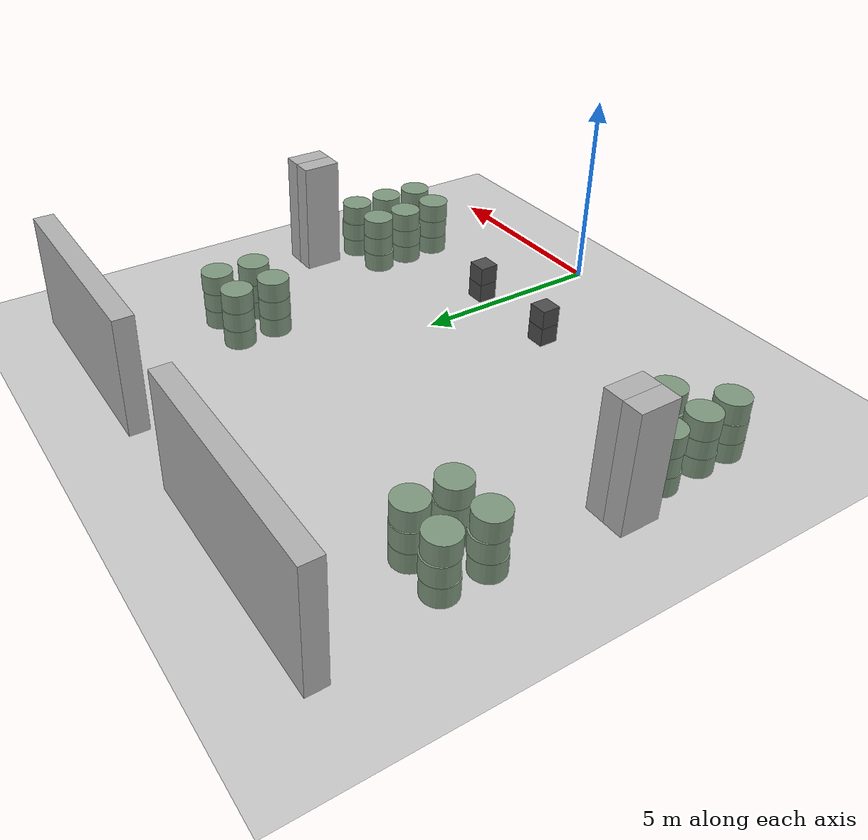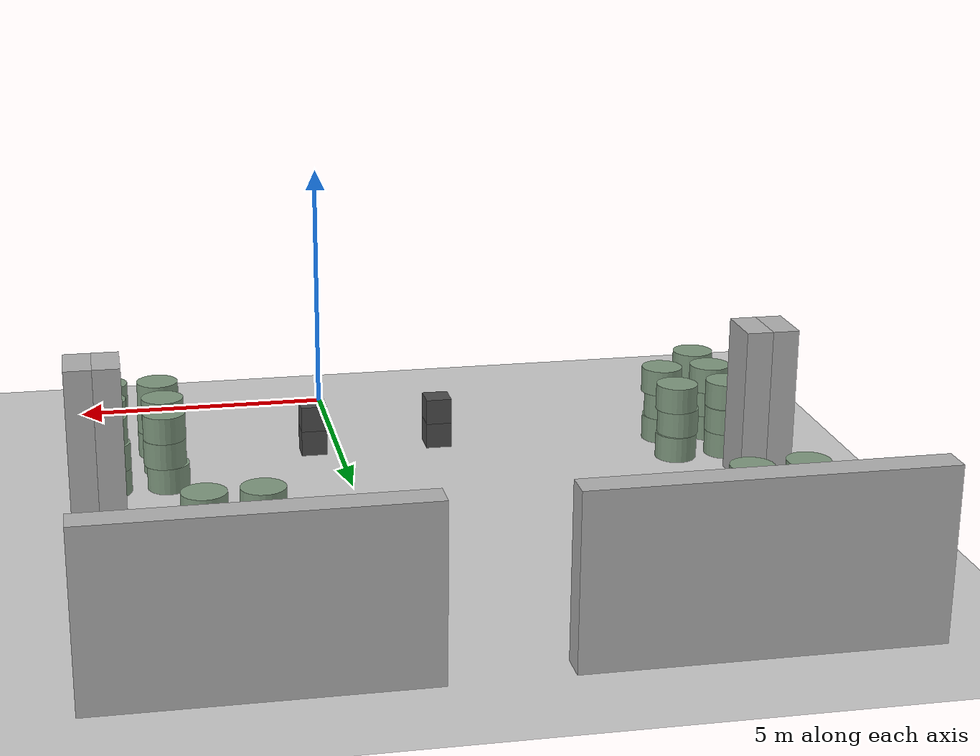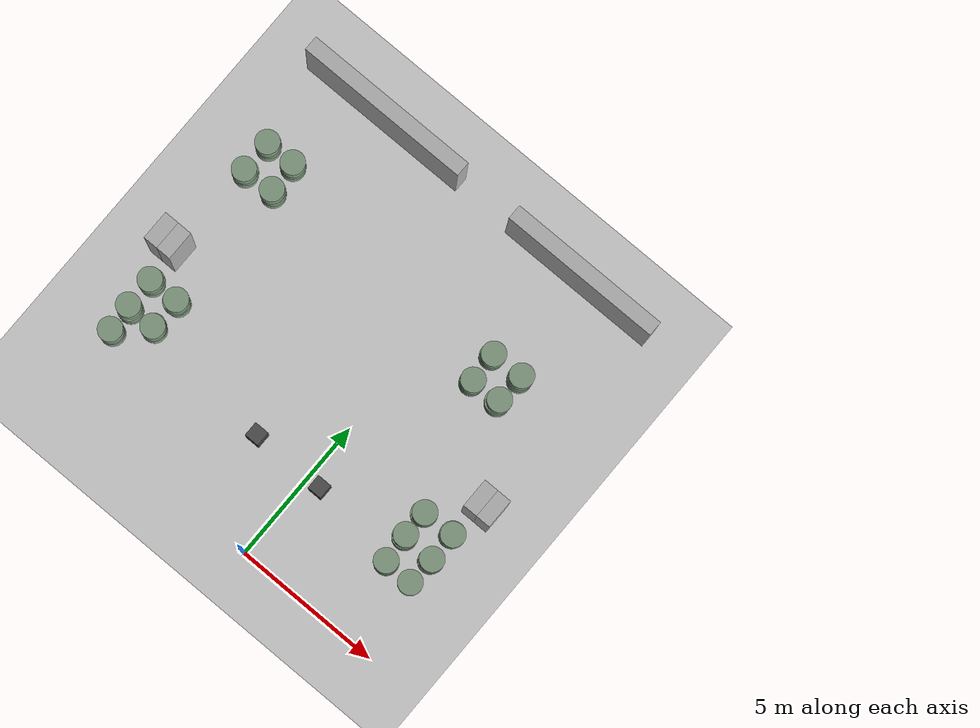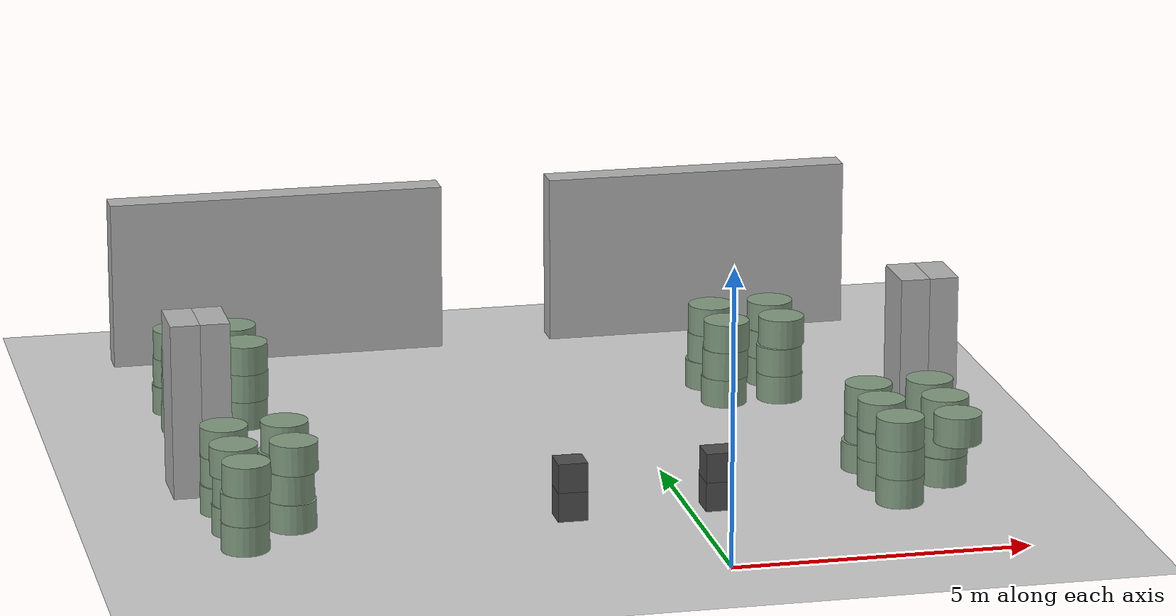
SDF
<sdf version="1.6">
 <world name="default">
  <include><uri>model://ground_plane</uri></include>
  <model name="wall_3">
   <pose>-8.0 5.75 1.5 0 -0 0</pose>
   <static>True</static>
   <link name="link">
    <inertial>
     <mass>100</mass>
     <inertia>
      <ixx>0.166667</ixx>
      <ixy>0</ixy>
      <ixz>0</ixz>
      <iyy>0.166667</iyy>
      <iyz>0</iyz>
      <izz>0.166667</izz>
     </inertia>
    </inertial>
    <collision name="collision"><geometry><box><size>0.5 1.0 3.0</size></box></geometry></collision>
    <visual name="visual">
     <geometry><box><size>0.5 1.0 3.0</size></box></geometry>
     <material><ambient>0.7 0.7 0.7 1</ambient><diffuse>0.7 0.7 0.7 1</diffuse></material>
    </visual>
   </link>
  </model>
  <model name="wall_6">
   <pose>-7.5 5.75 1.5 0 -0 0</pose>
   <static>True</static>
   <link name="link">
    <inertial>
     <mass>100</mass>
     <inertia>
      <ixx>0.166667</ixx>
      <ixy>0</ixy>
      <ixz>0</ixz>
      <iyy>0.166667</iyy>
      <iyz>0</iyz>
      <izz>0.166667</izz>
     </inertia>
    </inertial>
    <collision name="collision"><geometry><box><size>0.5 1.0 3.0</size></box></geometry></collision>
    <visual name="visual">
     <geometry><box><size>0.5 1.0 3.0</size></box></geometry>
     <material><ambient>0.7 0.7 0.7 1</ambient><diffuse>0.7 0.7 0.7 1</diffuse></material>
    </visual>
   </link>
  </model>
  <model name="wall_9">
   <pose>4.5 5.75 1.5 0 -0 0</pose>
   <static>True</static>
   <link name="link">
    <inertial>
     <mass>100</mass>
     <inertia>
      <ixx>0.166667</ixx>
      <ixy>0</ixy>
      <ixz>0</ixz>
      <iyy>0.166667</iyy>
      <iyz>0</iyz>
      <izz>0.166667</izz>
     </inertia>
    </inertial>
    <collision name="collision"><geometry><box><size>0.5 1.0 3.0</size></box></geometry></collision>
    <visual name="visual">
     <geometry><box><size>0.5 1.0 3.0</size></box></geometry>
     <material><ambient>0.7 0.7 0.7 1</ambient><diffuse>0.7 0.7 0.7 1</diffuse></material>
    </visual>
   </link>
  </model>
  <model name="wall_12">
   <pose>5.0 5.75 1.5 0 -0 0</pose>
   <static>True</static>
   <link name="link">
    <inertial>
     <mass>100</mass>
     <inertia>
      <ixx>0.166667</ixx>
      <ixy>0</ixy>
      <ixz>0</ixz>
      <iyy>0.166667</iyy>
      <iyz>0</iyz>
      <izz>0.166667</izz>
     </inertia>
    </inertial>
    <collision name="collision"><geometry><box><size>0.5 1.0 3.0</size></box></geometry></collision>
    <visual name="visual">
     <geometry><box><size>0.5 1.0 3.0</size></box></geometry>
     <material><ambient>0.7 0.7 0.7 1</ambient><diffuse>0.7 0.7 0.7 1</diffuse></material>
    </visual>
   </link>
  </model>
  <model name="wall_15">
   <pose>-5.25 13.0 1.5 0 -0 0</pose>
   <static>True</static>
   <link name="link">
    <inertial>
     <mass>100</mass>
     <inertia>
      <ixx>0.166667</ixx>
      <ixy>0</ixy>
      <ixz>0</ixz>
      <iyy>0.166667</iyy>
      <iyz>0</iyz>
      <izz>0.166667</izz>
     </inertia>
    </inertial>
    <collision name="collision"><geometry><box><size>6.0 0.5 3.0</size></box></geometry></collision>
    <visual name="visual">
     <geometry><box><size>6.0 0.5 3.0</size></box></geometry>
     <material><ambient>0.7 0.7 0.7 1</ambient><diffuse>0.7 0.7 0.7 1</diffuse></material>
    </visual>
   </link>
  </model>
  <model name="wall_16">
   <pose>2.5 13.0 1.5 0 -0 0</pose>
   <static>True</static>
   <link name="link">
    <inertial>
     <mass>100</mass>
     <inertia>
      <ixx>0.166667</ixx>
      <ixy>0</ixy>
      <ixz>0</ixz>
      <iyy>0.166667</iyy>
      <iyz>0</iyz>
      <izz>0.166667</izz>
     </inertia>
    </inertial>
    <collision name="collision"><geometry><box><size>5.5 0.5 3.0</size></box></geometry></collision>
    <visual name="visual">
     <geometry><box><size>5.5 0.5 3.0</size></box></geometry>
     <material><ambient>0.7 0.7 0.7 1</ambient><diffuse>0.7 0.7 0.7 1</diffuse></material>
    </visual>
   </link>
  </model>
  <model name="unit_box_2">
   <pose>-2.0 3.0 0.25 0 -0 0</pose>
   <static>True</static>
   <link name="link">
    <inertial>
     <mass>100</mass>
     <inertia>
      <ixx>0.166667</ixx>
      <ixy>0</ixy>
      <ixz>0</ixz>
      <iyy>0.166667</iyy>
      <iyz>0</iyz>
      <izz>0.166667</izz>
     </inertia>
    </inertial>
    <collision name="collision"><geometry><box><size>0.5 0.5 0.5</size></box></geometry></collision>
    <visual name="visual">
     <geometry><box><size>0.5 0.5 0.5</size></box></geometry>
     <material><ambient>0.3 0.3 0.3 1</ambient><diffuse>0.3 0.3 0.3 1</diffuse></material>
    </visual>
   </link>
  </model>
  <model name="unit_box_3">
   <pose>-2.0 3.0 0.75 0 -0 0</pose>
   <static>True</static>
   <link name="link">
    <inertial>
     <mass>100</mass>
     <inertia>
      <ixx>0.166667</ixx>
      <ixy>0</ixy>
      <ixz>0</ixz>
      <iyy>0.166667</iyy>
      <iyz>0</iyz>
      <izz>0.166667</izz>
     </inertia>
    </inertial>
    <collision name="collision"><geometry><box><size>0.5 0.5 0.5</size></box></geometry></collision>
    <visual name="visual">
     <geometry><box><size>0.5 0.5 0.5</size></box></geometry>
     <material><ambient>0.3 0.3 0.3 1</ambient><diffuse>0.3 0.3 0.3 1</diffuse></material>
    </visual>
   </link>
  </model>
  <model name="unit_box_24">
   <pose>0.5 3.0 0.25 0 -0 0</pose>
   <static>True</static>
   <link name="link">
    <inertial>
     <mass>100</mass>
     <inertia>
      <ixx>0.166667</ixx>
      <ixy>0</ixy>
      <ixz>0</ixz>
      <iyy>0.166667</iyy>
      <iyz>0</iyz>
      <izz>0.166667</izz>
     </inertia>
    </inertial>
    <collision name="collision"><geometry><box><size>0.5 0.5 0.5</size></box></geometry></collision>
    <visual name="visual">
     <geometry><box><size>0.5 0.5 0.5</size></box></geometry>
     <material><ambient>0.3 0.3 0.3 1</ambient><diffuse>0.3 0.3 0.3 1</diffuse></material>
    </visual>
   </link>
  </model>
  <model name="unit_box_25">
   <pose>0.5 3.0 0.75 0 -0 0</pose>
   <static>True</static>
   <link name="link">
    <inertial>
     <mass>100</mass>
     <inertia>
      <ixx>0.166667</ixx>
      <ixy>0</ixy>
      <ixz>0</ixz>
      <iyy>0.166667</iyy>
      <iyz>0</iyz>
      <izz>0.166667</izz>
     </inertia>
    </inertial>
    <collision name="collision"><geometry><box><size>0.5 0.5 0.5</size></box></geometry></collision>
    <visual name="visual">
     <geometry><box><size>0.5 0.5 0.5</size></box></geometry>
     <material><ambient>0.3 0.3 0.3 1</ambient><diffuse>0.3 0.3 0.3 1</diffuse></material>
    </visual>
   </link>
  </model>
  <model name="unit_cylinder_39">
   <pose>-7.46776949374 2.55712516854 0.25 0 -0 0</pose>
   <static>True</static>
   <link name="link">
    <inertial>
     <mass>100</mass>
     <inertia><ixx>0.145833</ixx><ixy>0</ixy><ixz>0</ixz><iyy>0.145833</iyy><iyz>0</iyz><izz>0.125</izz></inertia>
    </inertial>
    <collision name="collision">
     <geometry><cylinder><radius>0.4</radius><length>0.5</length></cylinder></geometry>
     <max_contacts>100</max_contacts>
    </collision>
    <visual name="visual">
     <geometry><cylinder><radius>0.4</radius><length>0.5</length></cylinder></geometry>
     <material><ambient>0.5 0.6 0.5 1</ambient><diffuse>0.5 0.6 0.5 1</diffuse></material>
    </visual>
   </link>
  </model>
  <model name="unit_cylinder_40">
   <pose>-7.46211153728 2.56409534766 0.75 0 -0 0</pose>
   <static>True</static>
   <link name="link">
    <inertial>
     <mass>100</mass>
     <inertia><ixx>0.145833</ixx><ixy>0</ixy><ixz>0</ixz><iyy>0.145833</iyy><iyz>0</iyz><izz>0.125</izz></inertia>
    </inertial>
    <collision name="collision">
     <geometry><cylinder><radius>0.4</radius><length>0.5</length></cylinder></geometry>
     <max_contacts>100</max_contacts>
    </collision>
    <visual name="visual">
     <geometry><cylinder><radius>0.4</radius><length>0.5</length></cylinder></geometry>
     <material><ambient>0.5 0.6 0.5 1</ambient><diffuse>0.5 0.6 0.5 1</diffuse></material>
    </visual>
   </link>
  </model>
  <model name="unit_cylinder_41">
   <pose>-7.43585296841 2.55020432169 1.25 0 -0 0</pose>
   <static>True</static>
   <link name="link">
    <inertial>
     <mass>100</mass>
     <inertia><ixx>0.145833</ixx><ixy>0</ixy><ixz>0</ixz><iyy>0.145833</iyy><iyz>0</iyz><izz>0.125</izz></inertia>
    </inertial>
    <collision name="collision">
     <geometry><cylinder><radius>0.4</radius><length>0.5</length></cylinder></geometry>
     <max_contacts>100</max_contacts>
    </collision>
    <visual name="visual">
     <geometry><cylinder><radius>0.4</radius><length>0.5</length></cylinder></geometry>
     <material><ambient>0.5 0.6 0.5 1</ambient><diffuse>0.5 0.6 0.5 1</diffuse></material>
    </visual>
   </link>
  </model>
  <model name="unit_cylinder_42">
   <pose>-7.48597329713 3.43768554424 0.25 0 -0 0</pose>
   <static>True</static>
   <link name="link">
    <inertial>
     <mass>100</mass>
     <inertia><ixx>0.145833</ixx><ixy>0</ixy><ixz>0</ixz><iyy>0.145833</iyy><iyz>0</iyz><izz>0.125</izz></inertia>
    </inertial>
    <collision name="collision">
     <geometry><cylinder><radius>0.4</radius><length>0.5</length></cylinder></geometry>
     <max_contacts>100</max_contacts>
    </collision>
    <visual name="visual">
     <geometry><cylinder><radius>0.4</radius><length>0.5</length></cylinder></geometry>
     <material><ambient>0.5 0.6 0.5 1</ambient><diffuse>0.5 0.6 0.5 1</diffuse></material>
    </visual>
   </link>
  </model>
  <model name="unit_cylinder_43">
   <pose>-7.46325582719 3.43793933564 0.75 0 -0 0</pose>
   <static>True</static>
   <link name="link">
    <inertial>
     <mass>100</mass>
     <inertia><ixx>0.145833</ixx><ixy>0</ixy><ixz>0</ixz><iyy>0.145833</iyy><iyz>0</iyz><izz>0.125</izz></inertia>
    </inertial>
    <collision name="collision">
     <geometry><cylinder><radius>0.4</radius><length>0.5</length></cylinder></geometry>
     <max_contacts>100</max_contacts>
    </collision>
    <visual name="visual">
     <geometry><cylinder><radius>0.4</radius><length>0.5</length></cylinder></geometry>
     <material><ambient>0.5 0.6 0.5 1</ambient><diffuse>0.5 0.6 0.5 1</diffuse></material>
    </visual>
   </link>
  </model>
  <model name="unit_cylinder_44">
   <pose>-7.50015310776 3.47460757541 1.25 0 -0 0</pose>
   <static>True</static>
   <link name="link">
    <inertial>
     <mass>100</mass>
     <inertia><ixx>0.145833</ixx><ixy>0</ixy><ixz>0</ixz><iyy>0.145833</iyy><iyz>0</iyz><izz>0.125</izz></inertia>
    </inertial>
    <collision name="collision">
     <geometry><cylinder><radius>0.4</radius><length>0.5</length></cylinder></geometry>
     <max_contacts>100</max_contacts>
    </collision>
    <visual name="visual">
     <geometry><cylinder><radius>0.4</radius><length>0.5</length></cylinder></geometry>
     <material><ambient>0.5 0.6 0.5 1</ambient><diffuse>0.5 0.6 0.5 1</diffuse></material>
    </visual>
   </link>
  </model>
  <model name="unit_cylinder_45">
   <pose>-7.51903111805 4.50333828293 0.25 0 -0 0</pose>
   <static>True</static>
   <link name="link">
    <inertial>
     <mass>100</mass>
     <inertia><ixx>0.145833</ixx><ixy>0</ixy><ixz>0</ixz><iyy>0.145833</iyy><iyz>0</iyz><izz>0.125</izz></inertia>
    </inertial>
    <collision name="collision">
     <geometry><cylinder><radius>0.4</radius><length>0.5</length></cylinder></geometry>
     <max_contacts>100</max_contacts>
    </collision>
    <visual name="visual">
     <geometry><cylinder><radius>0.4</radius><length>0.5</length></cylinder></geometry>
     <material><ambient>0.5 0.6 0.5 1</ambient><diffuse>0.5 0.6 0.5 1</diffuse></material>
    </visual>
   </link>
  </model>
  <model name="unit_cylinder_46">
   <pose>-7.50111513979 4.52508783471 0.75 0 -0 0</pose>
   <static>True</static>
   <link name="link">
    <inertial>
     <mass>100</mass>
     <inertia><ixx>0.145833</ixx><ixy>0</ixy><ixz>0</ixz><iyy>0.145833</iyy><iyz>0</iyz><izz>0.125</izz></inertia>
    </inertial>
    <collision name="collision">
     <geometry><cylinder><radius>0.4</radius><length>0.5</length></cylinder></geometry>
     <max_contacts>100</max_contacts>
    </collision>
    <visual name="visual">
     <geometry><cylinder><radius>0.4</radius><length>0.5</length></cylinder></geometry>
     <material><ambient>0.5 0.6 0.5 1</ambient><diffuse>0.5 0.6 0.5 1</diffuse></material>
    </visual>
   </link>
  </model>
  <model name="unit_cylinder_47">
   <pose>-7.50561749975 4.48839652024 1.25 0 -0 0</pose>
   <static>True</static>
   <link name="link">
    <inertial>
     <mass>100</mass>
     <inertia><ixx>0.145833</ixx><ixy>0</ixy><ixz>0</ixz><iyy>0.145833</iyy><iyz>0</iyz><izz>0.125</izz></inertia>
    </inertial>
    <collision name="collision">
     <geometry><cylinder><radius>0.4</radius><length>0.5</length></cylinder></geometry>
     <max_contacts>100</max_contacts>
    </collision>
    <visual name="visual">
     <geometry><cylinder><radius>0.4</radius><length>0.5</length></cylinder></geometry>
     <material><ambient>0.5 0.6 0.5 1</ambient><diffuse>0.5 0.6 0.5 1</diffuse></material>
    </visual>
   </link>
  </model>
  <model name="unit_cylinder_48">
   <pose>-7.53351866148 8.94920257883 0.25 0 -0 0</pose>
   <static>True</static>
   <link name="link">
    <inertial>
     <mass>100</mass>
     <inertia><ixx>0.145833</ixx><ixy>0</ixy><ixz>0</ixz><iyy>0.145833</iyy><iyz>0</iyz><izz>0.125</izz></inertia>
    </inertial>
    <collision name="collision">
     <geometry><cylinder><radius>0.4</radius><length>0.5</length></cylinder></geometry>
     <max_contacts>100</max_contacts>
    </collision>
    <visual name="visual">
     <geometry><cylinder><radius>0.4</radius><length>0.5</length></cylinder></geometry>
     <material><ambient>0.5 0.6 0.5 1</ambient><diffuse>0.5 0.6 0.5 1</diffuse></material>
    </visual>
   </link>
  </model>
  <model name="unit_cylinder_49">
   <pose>-7.51068116479 8.96919411964 0.75 0 -0 0</pose>
   <static>True</static>
   <link name="link">
    <inertial>
     <mass>100</mass>
     <inertia><ixx>0.145833</ixx><ixy>0</ixy><ixz>0</ixz><iyy>0.145833</iyy><iyz>0</iyz><izz>0.125</izz></inertia>
    </inertial>
    <collision name="collision">
     <geometry><cylinder><radius>0.4</radius><length>0.5</length></cylinder></geometry>
     <max_contacts>100</max_contacts>
    </collision>
    <visual name="visual">
     <geometry><cylinder><radius>0.4</radius><length>0.5</length></cylinder></geometry>
     <material><ambient>0.5 0.6 0.5 1</ambient><diffuse>0.5 0.6 0.5 1</diffuse></material>
    </visual>
   </link>
  </model>
  <model name="unit_cylinder_50">
   <pose>-7.51052277986 8.923494088 1.25 0 -0 0</pose>
   <static>True</static>
   <link name="link">
    <inertial>
     <mass>100</mass>
     <inertia><ixx>0.145833</ixx><ixy>0</ixy><ixz>0</ixz><iyy>0.145833</iyy><iyz>0</iyz><izz>0.125</izz></inertia>
    </inertial>
    <collision name="collision">
     <geometry><cylinder><radius>0.4</radius><length>0.5</length></cylinder></geometry>
     <max_contacts>100</max_contacts>
    </collision>
    <visual name="visual">
     <geometry><cylinder><radius>0.4</radius><length>0.5</length></cylinder></geometry>
     <material><ambient>0.5 0.6 0.5 1</ambient><diffuse>0.5 0.6 0.5 1</diffuse></material>
    </visual>
   </link>
  </model>
  <model name="unit_cylinder_51">
   <pose>-7.53328613226 10.0430049423 0.25 0 -0 0</pose>
   <static>True</static>
   <link name="link">
    <inertial>
     <mass>100</mass>
     <inertia><ixx>0.145833</ixx><ixy>0</ixy><ixz>0</ixz><iyy>0.145833</iyy><iyz>0</iyz><izz>0.125</izz></inertia>
    </inertial>
    <collision name="collision">
     <geometry><cylinder><radius>0.4</radius><length>0.5</length></cylinder></geometry>
     <max_contacts>100</max_contacts>
    </collision>
    <visual name="visual">
     <geometry><cylinder><radius>0.4</radius><length>0.5</length></cylinder></geometry>
     <material><ambient>0.5 0.6 0.5 1</ambient><diffuse>0.5 0.6 0.5 1</diffuse></material>
    </visual>
   </link>
  </model>
  <model name="unit_cylinder_52">
   <pose>-7.51256771309 10.0580385262 0.75 0 -0 0</pose>
   <static>True</static>
   <link name="link">
    <inertial>
     <mass>100</mass>
     <inertia><ixx>0.145833</ixx><ixy>0</ixy><ixz>0</ixz><iyy>0.145833</iyy><iyz>0</iyz><izz>0.125</izz></inertia>
    </inertial>
    <collision name="collision">
     <geometry><cylinder><radius>0.4</radius><length>0.5</length></cylinder></geometry>
     <max_contacts>100</max_contacts>
    </collision>
    <visual name="visual">
     <geometry><cylinder><radius>0.4</radius><length>0.5</length></cylinder></geometry>
     <material><ambient>0.5 0.6 0.5 1</ambient><diffuse>0.5 0.6 0.5 1</diffuse></material>
    </visual>
   </link>
  </model>
  <model name="unit_cylinder_53">
   <pose>-7.50197945629 10.0178528666 1.25 0 -0 0</pose>
   <static>True</static>
   <link name="link">
    <inertial>
     <mass>100</mass>
     <inertia><ixx>0.145833</ixx><ixy>0</ixy><ixz>0</ixz><iyy>0.145833</iyy><iyz>0</iyz><izz>0.125</izz></inertia>
    </inertial>
    <collision name="collision">
     <geometry><cylinder><radius>0.4</radius><length>0.5</length></cylinder></geometry>
     <max_contacts>100</max_contacts>
    </collision>
    <visual name="visual">
     <geometry><cylinder><radius>0.4</radius><length>0.5</length></cylinder></geometry>
     <material><ambient>0.5 0.6 0.5 1</ambient><diffuse>0.5 0.6 0.5 1</diffuse></material>
    </visual>
   </link>
  </model>
  <model name="unit_cylinder_96">
   <pose>-6.54610745725 3.45770490383 0.25 0 -0 0</pose>
   <static>True</static>
   <link name="link">
    <inertial>
     <mass>100</mass>
     <inertia><ixx>0.145833</ixx><ixy>0</ixy><ixz>0</ixz><iyy>0.145833</iyy><iyz>0</iyz><izz>0.125</izz></inertia>
    </inertial>
    <collision name="collision">
     <geometry><cylinder><radius>0.4</radius><length>0.5</length></cylinder></geometry>
     <max_contacts>100</max_contacts>
    </collision>
    <visual name="visual">
     <geometry><cylinder><radius>0.4</radius><length>0.5</length></cylinder></geometry>
     <material><ambient>0.5 0.6 0.5 1</ambient><diffuse>0.5 0.6 0.5 1</diffuse></material>
    </visual>
   </link>
  </model>
  <model name="unit_cylinder_97">
   <pose>-6.5684343311 3.49515357408 0.75 0 -0 0</pose>
   <static>True</static>
   <link name="link">
    <inertial>
     <mass>100</mass>
     <inertia><ixx>0.145833</ixx><ixy>0</ixy><ixz>0</ixz><iyy>0.145833</iyy><iyz>0</iyz><izz>0.125</izz></inertia>
    </inertial>
    <collision name="collision">
     <geometry><cylinder><radius>0.4</radius><length>0.5</length></cylinder></geometry>
     <max_contacts>100</max_contacts>
    </collision>
    <visual name="visual">
     <geometry><cylinder><radius>0.4</radius><length>0.5</length></cylinder></geometry>
     <material><ambient>0.5 0.6 0.5 1</ambient><diffuse>0.5 0.6 0.5 1</diffuse></material>
    </visual>
   </link>
  </model>
  <model name="unit_cylinder_98">
   <pose>-6.51075116749 3.4484297739 1.25 0 -0 0</pose>
   <static>True</static>
   <link name="link">
    <inertial>
     <mass>100</mass>
     <inertia><ixx>0.145833</ixx><ixy>0</ixy><ixz>0</ixz><iyy>0.145833</iyy><iyz>0</iyz><izz>0.125</izz></inertia>
    </inertial>
    <collision name="collision">
     <geometry><cylinder><radius>0.4</radius><length>0.5</length></cylinder></geometry>
     <max_contacts>100</max_contacts>
    </collision>
    <visual name="visual">
     <geometry><cylinder><radius>0.4</radius><length>0.5</length></cylinder></geometry>
     <material><ambient>0.5 0.6 0.5 1</ambient><diffuse>0.5 0.6 0.5 1</diffuse></material>
    </visual>
   </link>
  </model>
  <model name="unit_cylinder_99">
   <pose>-6.50612689086 4.53830533162 0.25 0 -0 0</pose>
   <static>True</static>
   <link name="link">
    <inertial>
     <mass>100</mass>
     <inertia><ixx>0.145833</ixx><ixy>0</ixy><ixz>0</ixz><iyy>0.145833</iyy><iyz>0</iyz><izz>0.125</izz></inertia>
    </inertial>
    <collision name="collision">
     <geometry><cylinder><radius>0.4</radius><length>0.5</length></cylinder></geometry>
     <max_contacts>100</max_contacts>
    </collision>
    <visual name="visual">
     <geometry><cylinder><radius>0.4</radius><length>0.5</length></cylinder></geometry>
     <material><ambient>0.5 0.6 0.5 1</ambient><diffuse>0.5 0.6 0.5 1</diffuse></material>
    </visual>
   </link>
  </model>
  <model name="unit_cylinder_100">
   <pose>-6.53764586669 4.50114208868 0.75 0 -0 0</pose>
   <static>True</static>
   <link name="link">
    <inertial>
     <mass>100</mass>
     <inertia><ixx>0.145833</ixx><ixy>0</ixy><ixz>0</ixz><iyy>0.145833</iyy><iyz>0</iyz><izz>0.125</izz></inertia>
    </inertial>
    <collision name="collision">
     <geometry><cylinder><radius>0.4</radius><length>0.5</length></cylinder></geometry>
     <max_contacts>100</max_contacts>
    </collision>
    <visual name="visual">
     <geometry><cylinder><radius>0.4</radius><length>0.5</length></cylinder></geometry>
     <material><ambient>0.5 0.6 0.5 1</ambient><diffuse>0.5 0.6 0.5 1</diffuse></material>
    </visual>
   </link>
  </model>
  <model name="unit_cylinder_101">
   <pose>-6.48812432651 4.52600340407 1.25 0 -0 0</pose>
   <static>True</static>
   <link name="link">
    <inertial>
     <mass>100</mass>
     <inertia><ixx>0.145833</ixx><ixy>0</ixy><ixz>0</ixz><iyy>0.145833</iyy><iyz>0</iyz><izz>0.125</izz></inertia>
    </inertial>
    <collision name="collision">
     <geometry><cylinder><radius>0.4</radius><length>0.5</length></cylinder></geometry>
     <max_contacts>100</max_contacts>
    </collision>
    <visual name="visual">
     <geometry><cylinder><radius>0.4</radius><length>0.5</length></cylinder></geometry>
     <material><ambient>0.5 0.6 0.5 1</ambient><diffuse>0.5 0.6 0.5 1</diffuse></material>
    </visual>
   </link>
  </model>
  <model name="unit_cylinder_102">
   <pose>-6.46310162821 9.01994029021 0.25 0 -0 0</pose>
   <static>True</static>
   <link name="link">
    <inertial>
     <mass>100</mass>
     <inertia><ixx>0.145833</ixx><ixy>0</ixy><ixz>0</ixz><iyy>0.145833</iyy><iyz>0</iyz><izz>0.125</izz></inertia>
    </inertial>
    <collision name="collision">
     <geometry><cylinder><radius>0.4</radius><length>0.5</length></cylinder></geometry>
     <max_contacts>100</max_contacts>
    </collision>
    <visual name="visual">
     <geometry><cylinder><radius>0.4</radius><length>0.5</length></cylinder></geometry>
     <material><ambient>0.5 0.6 0.5 1</ambient><diffuse>0.5 0.6 0.5 1</diffuse></material>
    </visual>
   </link>
  </model>
  <model name="unit_cylinder_103">
   <pose>-6.44566242451 9.01991168865 0.75 0 -0 0</pose>
   <static>True</static>
   <link name="link">
    <inertial>
     <mass>100</mass>
     <inertia><ixx>0.145833</ixx><ixy>0</ixy><ixz>0</ixz><iyy>0.145833</iyy><iyz>0</iyz><izz>0.125</izz></inertia>
    </inertial>
    <collision name="collision">
     <geometry><cylinder><radius>0.4</radius><length>0.5</length></cylinder></geometry>
     <max_contacts>100</max_contacts>
    </collision>
    <visual name="visual">
     <geometry><cylinder><radius>0.4</radius><length>0.5</length></cylinder></geometry>
     <material><ambient>0.5 0.6 0.5 1</ambient><diffuse>0.5 0.6 0.5 1</diffuse></material>
    </visual>
   </link>
  </model>
  <model name="unit_cylinder_104">
   <pose>-6.45468588082 8.99519764995 1.25 0 -0 0</pose>
   <static>True</static>
   <link name="link">
    <inertial>
     <mass>100</mass>
     <inertia><ixx>0.145833</ixx><ixy>0</ixy><ixz>0</ixz><iyy>0.145833</iyy><iyz>0</iyz><izz>0.125</izz></inertia>
    </inertial>
    <collision name="collision">
     <geometry><cylinder><radius>0.4</radius><length>0.5</length></cylinder></geometry>
     <max_contacts>100</max_contacts>
    </collision>
    <visual name="visual">
     <geometry><cylinder><radius>0.4</radius><length>0.5</length></cylinder></geometry>
     <material><ambient>0.5 0.6 0.5 1</ambient><diffuse>0.5 0.6 0.5 1</diffuse></material>
    </visual>
   </link>
  </model>
  <model name="unit_cylinder_105">
   <pose>-6.54249363 10.0546821207 0.25 0 -0 0</pose>
   <static>True</static>
   <link name="link">
    <inertial>
     <mass>100</mass>
     <inertia><ixx>0.145833</ixx><ixy>0</ixy><ixz>0</ixz><iyy>0.145833</iyy><iyz>0</iyz><izz>0.125</izz></inertia>
    </inertial>
    <collision name="collision">
     <geometry><cylinder><radius>0.4</radius><length>0.5</length></cylinder></geometry>
     <max_contacts>100</max_contacts>
    </collision>
    <visual name="visual">
     <geometry><cylinder><radius>0.4</radius><length>0.5</length></cylinder></geometry>
     <material><ambient>0.5 0.6 0.5 1</ambient><diffuse>0.5 0.6 0.5 1</diffuse></material>
    </visual>
   </link>
  </model>
  <model name="unit_cylinder_106">
   <pose>-6.52261517724 10.0548798095 0.75 0 -0 0</pose>
   <static>True</static>
   <link name="link">
    <inertial>
     <mass>100</mass>
     <inertia><ixx>0.145833</ixx><ixy>0</ixy><ixz>0</ixz><iyy>0.145833</iyy><iyz>0</iyz><izz>0.125</izz></inertia>
    </inertial>
    <collision name="collision">
     <geometry><cylinder><radius>0.4</radius><length>0.5</length></cylinder></geometry>
     <max_contacts>100</max_contacts>
    </collision>
    <visual name="visual">
     <geometry><cylinder><radius>0.4</radius><length>0.5</length></cylinder></geometry>
     <material><ambient>0.5 0.6 0.5 1</ambient><diffuse>0.5 0.6 0.5 1</diffuse></material>
    </visual>
   </link>
  </model>
  <model name="unit_cylinder_107">
   <pose>-6.4985080753 10.031876296 1.25 0 -0 0</pose>
   <static>True</static>
   <link name="link">
    <inertial>
     <mass>100</mass>
     <inertia><ixx>0.145833</ixx><ixy>0</ixy><ixz>0</ixz><iyy>0.145833</iyy><iyz>0</iyz><izz>0.125</izz></inertia>
    </inertial>
    <collision name="collision">
     <geometry><cylinder><radius>0.4</radius><length>0.5</length></cylinder></geometry>
     <max_contacts>100</max_contacts>
    </collision>
    <visual name="visual">
     <geometry><cylinder><radius>0.4</radius><length>0.5</length></cylinder></geometry>
     <material><ambient>0.5 0.6 0.5 1</ambient><diffuse>0.5 0.6 0.5 1</diffuse></material>
    </visual>
   </link>
  </model>
  <model name="unit_cylinder_108">
   <pose>1.96991130939 8.47924036767 0.25 0 -0 0</pose>
   <static>True</static>
   <link name="link">
    <inertial>
     <mass>100</mass>
     <inertia><ixx>0.145833</ixx><ixy>0</ixy><ixz>0</ixz><iyy>0.145833</iyy><iyz>0</iyz><izz>0.125</izz></inertia>
    </inertial>
    <collision name="collision">
     <geometry><cylinder><radius>0.4</radius><length>0.5</length></cylinder></geometry>
     <max_contacts>100</max_contacts>
    </collision>
    <visual name="visual">
     <geometry><cylinder><radius>0.4</radius><length>0.5</length></cylinder></geometry>
     <material><ambient>0.5 0.6 0.5 1</ambient><diffuse>0.5 0.6 0.5 1</diffuse></material>
    </visual>
   </link>
  </model>
  <model name="unit_cylinder_109">
   <pose>1.98608054619 8.47049042248 0.75 0 -0 0</pose>
   <static>True</static>
   <link name="link">
    <inertial>
     <mass>100</mass>
     <inertia><ixx>0.145833</ixx><ixy>0</ixy><ixz>0</ixz><iyy>0.145833</iyy><iyz>0</iyz><izz>0.125</izz></inertia>
    </inertial>
    <collision name="collision">
     <geometry><cylinder><radius>0.4</radius><length>0.5</length></cylinder></geometry>
     <max_contacts>100</max_contacts>
    </collision>
    <visual name="visual">
     <geometry><cylinder><radius>0.4</radius><length>0.5</length></cylinder></geometry>
     <material><ambient>0.5 0.6 0.5 1</ambient><diffuse>0.5 0.6 0.5 1</diffuse></material>
    </visual>
   </link>
  </model>
  <model name="unit_cylinder_110">
   <pose>2.00215664968 8.46686482537 1.25 0 -0 0</pose>
   <static>True</static>
   <link name="link">
    <inertial>
     <mass>100</mass>
     <inertia><ixx>0.145833</ixx><ixy>0</ixy><ixz>0</ixz><iyy>0.145833</iyy><iyz>0</iyz><izz>0.125</izz></inertia>
    </inertial>
    <collision name="collision">
     <geometry><cylinder><radius>0.4</radius><length>0.5</length></cylinder></geometry>
     <max_contacts>100</max_contacts>
    </collision>
    <visual name="visual">
     <geometry><cylinder><radius>0.4</radius><length>0.5</length></cylinder></geometry>
     <material><ambient>0.5 0.6 0.5 1</ambient><diffuse>0.5 0.6 0.5 1</diffuse></material>
    </visual>
   </link>
  </model>
  <model name="unit_cylinder_111">
   <pose>1.92736257542 9.49311492475 0.25 0 -0 0</pose>
   <static>True</static>
   <link name="link">
    <inertial>
     <mass>100</mass>
     <inertia><ixx>0.145833</ixx><ixy>0</ixy><ixz>0</ixz><iyy>0.145833</iyy><iyz>0</iyz><izz>0.125</izz></inertia>
    </inertial>
    <collision name="collision">
     <geometry><cylinder><radius>0.4</radius><length>0.5</length></cylinder></geometry>
     <max_contacts>100</max_contacts>
    </collision>
    <visual name="visual">
     <geometry><cylinder><radius>0.4</radius><length>0.5</length></cylinder></geometry>
     <material><ambient>0.5 0.6 0.5 1</ambient><diffuse>0.5 0.6 0.5 1</diffuse></material>
    </visual>
   </link>
  </model>
  <model name="unit_cylinder_112">
   <pose>1.95825251011 9.48713726423 0.75 0 -0 0</pose>
   <static>True</static>
   <link name="link">
    <inertial>
     <mass>100</mass>
     <inertia><ixx>0.145833</ixx><ixy>0</ixy><ixz>0</ixz><iyy>0.145833</iyy><iyz>0</iyz><izz>0.125</izz></inertia>
    </inertial>
    <collision name="collision">
     <geometry><cylinder><radius>0.4</radius><length>0.5</length></cylinder></geometry>
     <max_contacts>100</max_contacts>
    </collision>
    <visual name="visual">
     <geometry><cylinder><radius>0.4</radius><length>0.5</length></cylinder></geometry>
     <material><ambient>0.5 0.6 0.5 1</ambient><diffuse>0.5 0.6 0.5 1</diffuse></material>
    </visual>
   </link>
  </model>
  <model name="unit_cylinder_113">
   <pose>1.97346903824 9.47790837451 1.25 0 -0 0</pose>
   <static>True</static>
   <link name="link">
    <inertial>
     <mass>100</mass>
     <inertia><ixx>0.145833</ixx><ixy>0</ixy><ixz>0</ixz><iyy>0.145833</iyy><iyz>0</iyz><izz>0.125</izz></inertia>
    </inertial>
    <collision name="collision">
     <geometry><cylinder><radius>0.4</radius><length>0.5</length></cylinder></geometry>
     <max_contacts>100</max_contacts>
    </collision>
    <visual name="visual">
     <geometry><cylinder><radius>0.4</radius><length>0.5</length></cylinder></geometry>
     <material><ambient>0.5 0.6 0.5 1</ambient><diffuse>0.5 0.6 0.5 1</diffuse></material>
    </visual>
   </link>
  </model>
  <model name="unit_cylinder_114">
   <pose>2.97783924977 8.49112436688 0.25 0 -0 0</pose>
   <static>True</static>
   <link name="link">
    <inertial>
     <mass>100</mass>
     <inertia><ixx>0.145833</ixx><ixy>0</ixy><ixz>0</ixz><iyy>0.145833</iyy><iyz>0</iyz><izz>0.125</izz></inertia>
    </inertial>
    <collision name="collision">
     <geometry><cylinder><radius>0.4</radius><length>0.5</length></cylinder></geometry>
     <max_contacts>100</max_contacts>
    </collision>
    <visual name="visual">
     <geometry><cylinder><radius>0.4</radius><length>0.5</length></cylinder></geometry>
     <material><ambient>0.5 0.6 0.5 1</ambient><diffuse>0.5 0.6 0.5 1</diffuse></material>
    </visual>
   </link>
  </model>
  <model name="unit_cylinder_115">
   <pose>2.96381337933 8.47697777416 0.75 0 -0 0</pose>
   <static>True</static>
   <link name="link">
    <inertial>
     <mass>100</mass>
     <inertia><ixx>0.145833</ixx><ixy>0</ixy><ixz>0</ixz><iyy>0.145833</iyy><iyz>0</iyz><izz>0.125</izz></inertia>
    </inertial>
    <collision name="collision">
     <geometry><cylinder><radius>0.4</radius><length>0.5</length></cylinder></geometry>
     <max_contacts>100</max_contacts>
    </collision>
    <visual name="visual">
     <geometry><cylinder><radius>0.4</radius><length>0.5</length></cylinder></geometry>
     <material><ambient>0.5 0.6 0.5 1</ambient><diffuse>0.5 0.6 0.5 1</diffuse></material>
    </visual>
   </link>
  </model>
  <model name="unit_cylinder_116">
   <pose>3.003820299 8.51843826216 1.25 0 -0 0</pose>
   <static>True</static>
   <link name="link">
    <inertial>
     <mass>100</mass>
     <inertia><ixx>0.145833</ixx><ixy>0</ixy><ixz>0</ixz><iyy>0.145833</iyy><iyz>0</iyz><izz>0.125</izz></inertia>
    </inertial>
    <collision name="collision">
     <geometry><cylinder><radius>0.4</radius><length>0.5</length></cylinder></geometry>
     <max_contacts>100</max_contacts>
    </collision>
    <visual name="visual">
     <geometry><cylinder><radius>0.4</radius><length>0.5</length></cylinder></geometry>
     <material><ambient>0.5 0.6 0.5 1</ambient><diffuse>0.5 0.6 0.5 1</diffuse></material>
    </visual>
   </link>
  </model>
  <model name="unit_cylinder_117">
   <pose>3.03463809573 9.48934584394 0.25 0 -0 0</pose>
   <static>True</static>
   <link name="link">
    <inertial>
     <mass>100</mass>
     <inertia><ixx>0.145833</ixx><ixy>0</ixy><ixz>0</ixz><iyy>0.145833</iyy><iyz>0</iyz><izz>0.125</izz></inertia>
    </inertial>
    <collision name="collision">
     <geometry><cylinder><radius>0.4</radius><length>0.5</length></cylinder></geometry>
     <max_contacts>100</max_contacts>
    </collision>
    <visual name="visual">
     <geometry><cylinder><radius>0.4</radius><length>0.5</length></cylinder></geometry>
     <material><ambient>0.5 0.6 0.5 1</ambient><diffuse>0.5 0.6 0.5 1</diffuse></material>
    </visual>
   </link>
  </model>
  <model name="unit_cylinder_118">
   <pose>3.03286393004 9.49963297129 0.75 0 -0 0</pose>
   <static>True</static>
   <link name="link">
    <inertial>
     <mass>100</mass>
     <inertia><ixx>0.145833</ixx><ixy>0</ixy><ixz>0</ixz><iyy>0.145833</iyy><iyz>0</iyz><izz>0.125</izz></inertia>
    </inertial>
    <collision name="collision">
     <geometry><cylinder><radius>0.4</radius><length>0.5</length></cylinder></geometry>
     <max_contacts>100</max_contacts>
    </collision>
    <visual name="visual">
     <geometry><cylinder><radius>0.4</radius><length>0.5</length></cylinder></geometry>
     <material><ambient>0.5 0.6 0.5 1</ambient><diffuse>0.5 0.6 0.5 1</diffuse></material>
    </visual>
   </link>
  </model>
  <model name="unit_cylinder_119">
   <pose>3.04781011492 9.51356866912 1.25 0 -0 0</pose>
   <static>True</static>
   <link name="link">
    <inertial>
     <mass>100</mass>
     <inertia><ixx>0.145833</ixx><ixy>0</ixy><ixz>0</ixz><iyy>0.145833</iyy><iyz>0</iyz><izz>0.125</izz></inertia>
    </inertial>
    <collision name="collision">
     <geometry><cylinder><radius>0.4</radius><length>0.5</length></cylinder></geometry>
     <max_contacts>100</max_contacts>
    </collision>
    <visual name="visual">
     <geometry><cylinder><radius>0.4</radius><length>0.5</length></cylinder></geometry>
     <material><ambient>0.5 0.6 0.5 1</ambient><diffuse>0.5 0.6 0.5 1</diffuse></material>
    </visual>
   </link>
  </model>
  <model name="unit_cylinder_159">
   <pose>3.51445329329 2.57507568154 0.25 0 -0 0</pose>
   <static>True</static>
   <link name="link">
    <inertial>
     <mass>100</mass>
     <inertia><ixx>0.145833</ixx><ixy>0</ixy><ixz>0</ixz><iyy>0.145833</iyy><iyz>0</iyz><izz>0.125</izz></inertia>
    </inertial>
    <collision name="collision">
     <geometry><cylinder><radius>0.4</radius><length>0.5</length></cylinder></geometry>
     <max_contacts>100</max_contacts>
    </collision>
    <visual name="visual">
     <geometry><cylinder><radius>0.4</radius><length>0.5</length></cylinder></geometry>
     <material><ambient>0.5 0.6 0.5 1</ambient><diffuse>0.5 0.6 0.5 1</diffuse></material>
    </visual>
   </link>
  </model>
  <model name="unit_cylinder_160">
   <pose>3.51379882397 2.57657651586 0.75 0 -0 0</pose>
   <static>True</static>
   <link name="link">
    <inertial>
     <mass>100</mass>
     <inertia><ixx>0.145833</ixx><ixy>0</ixy><ixz>0</ixz><iyy>0.145833</iyy><iyz>0</iyz><izz>0.125</izz></inertia>
    </inertial>
    <collision name="collision">
     <geometry><cylinder><radius>0.4</radius><length>0.5</length></cylinder></geometry>
     <max_contacts>100</max_contacts>
    </collision>
    <visual name="visual">
     <geometry><cylinder><radius>0.4</radius><length>0.5</length></cylinder></geometry>
     <material><ambient>0.5 0.6 0.5 1</ambient><diffuse>0.5 0.6 0.5 1</diffuse></material>
    </visual>
   </link>
  </model>
  <model name="unit_cylinder_161">
   <pose>3.49981522857 2.57346558546 1.25 0 -0 0</pose>
   <static>True</static>
   <link name="link">
    <inertial>
     <mass>100</mass>
     <inertia><ixx>0.145833</ixx><ixy>0</ixy><ixz>0</ixz><iyy>0.145833</iyy><iyz>0</iyz><izz>0.125</izz></inertia>
    </inertial>
    <collision name="collision">
     <geometry><cylinder><radius>0.4</radius><length>0.5</length></cylinder></geometry>
     <max_contacts>100</max_contacts>
    </collision>
    <visual name="visual">
     <geometry><cylinder><radius>0.4</radius><length>0.5</length></cylinder></geometry>
     <material><ambient>0.5 0.6 0.5 1</ambient><diffuse>0.5 0.6 0.5 1</diffuse></material>
    </visual>
   </link>
  </model>
  <model name="unit_cylinder_162">
   <pose>3.45090590069 3.51625748356 0.25 0 -0 0</pose>
   <static>True</static>
   <link name="link">
    <inertial>
     <mass>100</mass>
     <inertia><ixx>0.145833</ixx><ixy>0</ixy><ixz>0</ixz><iyy>0.145833</iyy><iyz>0</iyz><izz>0.125</izz></inertia>
    </inertial>
    <collision name="collision">
     <geometry><cylinder><radius>0.4</radius><length>0.5</length></cylinder></geometry>
     <max_contacts>100</max_contacts>
    </collision>
    <visual name="visual">
     <geometry><cylinder><radius>0.4</radius><length>0.5</length></cylinder></geometry>
     <material><ambient>0.5 0.6 0.5 1</ambient><diffuse>0.5 0.6 0.5 1</diffuse></material>
    </visual>
   </link>
  </model>
  <model name="unit_cylinder_163">
   <pose>3.44574594036 3.51651393248 0.75 0 -0 0</pose>
   <static>True</static>
   <link name="link">
    <inertial>
     <mass>100</mass>
     <inertia><ixx>0.145833</ixx><ixy>0</ixy><ixz>0</ixz><iyy>0.145833</iyy><iyz>0</iyz><izz>0.125</izz></inertia>
    </inertial>
    <collision name="collision">
     <geometry><cylinder><radius>0.4</radius><length>0.5</length></cylinder></geometry>
     <max_contacts>100</max_contacts>
    </collision>
    <visual name="visual">
     <geometry><cylinder><radius>0.4</radius><length>0.5</length></cylinder></geometry>
     <material><ambient>0.5 0.6 0.5 1</ambient><diffuse>0.5 0.6 0.5 1</diffuse></material>
    </visual>
   </link>
  </model>
  <model name="unit_cylinder_164">
   <pose>3.4528064228 3.55727803895 1.25 0 -0 0</pose>
   <static>True</static>
   <link name="link">
    <inertial>
     <mass>100</mass>
     <inertia><ixx>0.145833</ixx><ixy>0</ixy><ixz>0</ixz><iyy>0.145833</iyy><iyz>0</iyz><izz>0.125</izz></inertia>
    </inertial>
    <collision name="collision">
     <geometry><cylinder><radius>0.4</radius><length>0.5</length></cylinder></geometry>
     <max_contacts>100</max_contacts>
    </collision>
    <visual name="visual">
     <geometry><cylinder><radius>0.4</radius><length>0.5</length></cylinder></geometry>
     <material><ambient>0.5 0.6 0.5 1</ambient><diffuse>0.5 0.6 0.5 1</diffuse></material>
    </visual>
   </link>
  </model>
  <model name="unit_cylinder_165">
   <pose>3.41988200971 4.43239238246 0.25 0 -0 0</pose>
   <static>True</static>
   <link name="link">
    <inertial>
     <mass>100</mass>
     <inertia><ixx>0.145833</ixx><ixy>0</ixy><ixz>0</ixz><iyy>0.145833</iyy><iyz>0</iyz><izz>0.125</izz></inertia>
    </inertial>
    <collision name="collision">
     <geometry><cylinder><radius>0.4</radius><length>0.5</length></cylinder></geometry>
     <max_contacts>100</max_contacts>
    </collision>
    <visual name="visual">
     <geometry><cylinder><radius>0.4</radius><length>0.5</length></cylinder></geometry>
     <material><ambient>0.5 0.6 0.5 1</ambient><diffuse>0.5 0.6 0.5 1</diffuse></material>
    </visual>
   </link>
  </model>
  <model name="unit_cylinder_166">
   <pose>3.47427981358 4.44048037377 0.75 0 -0 0</pose>
   <static>True</static>
   <link name="link">
    <inertial>
     <mass>100</mass>
     <inertia><ixx>0.145833</ixx><ixy>0</ixy><ixz>0</ixz><iyy>0.145833</iyy><iyz>0</iyz><izz>0.125</izz></inertia>
    </inertial>
    <collision name="collision">
     <geometry><cylinder><radius>0.4</radius><length>0.5</length></cylinder></geometry>
     <max_contacts>100</max_contacts>
    </collision>
    <visual name="visual">
     <geometry><cylinder><radius>0.4</radius><length>0.5</length></cylinder></geometry>
     <material><ambient>0.5 0.6 0.5 1</ambient><diffuse>0.5 0.6 0.5 1</diffuse></material>
    </visual>
   </link>
  </model>
  <model name="unit_cylinder_167">
   <pose>3.4687953923 4.43675377836 1.25 0 -0 0</pose>
   <static>True</static>
   <link name="link">
    <inertial>
     <mass>100</mass>
     <inertia><ixx>0.145833</ixx><ixy>0</ixy><ixz>0</ixz><iyy>0.145833</iyy><iyz>0</iyz><izz>0.125</izz></inertia>
    </inertial>
    <collision name="collision">
     <geometry><cylinder><radius>0.4</radius><length>0.5</length></cylinder></geometry>
     <max_contacts>100</max_contacts>
    </collision>
    <visual name="visual">
     <geometry><cylinder><radius>0.4</radius><length>0.5</length></cylinder></geometry>
     <material><ambient>0.5 0.6 0.5 1</ambient><diffuse>0.5 0.6 0.5 1</diffuse></material>
    </visual>
   </link>
  </model>
  <model name="unit_cylinder_209">
   <pose>4.48222141864 2.541668201 1.25 0 -0 0</pose>
   <static>True</static>
   <link name="link">
    <inertial>
     <mass>100</mass>
     <inertia><ixx>0.145833</ixx><ixy>0</ixy><ixz>0</ixz><iyy>0.145833</iyy><iyz>0</iyz><izz>0.125</izz></inertia>
    </inertial>
    <collision name="collision">
     <geometry><cylinder><radius>0.4</radius><length>0.5</length></cylinder></geometry>
     <max_contacts>100</max_contacts>
    </collision>
    <visual name="visual">
     <geometry><cylinder><radius>0.4</radius><length>0.5</length></cylinder></geometry>
     <material><ambient>0.5 0.6 0.5 1</ambient><diffuse>0.5 0.6 0.5 1</diffuse></material>
    </visual>
   </link>
  </model>
  <model name="unit_cylinder_210">
   <pose>4.51523268962 3.46880185315 0.25 0 -0 0</pose>
   <static>True</static>
   <link name="link">
    <inertial>
     <mass>100</mass>
     <inertia><ixx>0.145833</ixx><ixy>0</ixy><ixz>0</ixz><iyy>0.145833</iyy><iyz>0</iyz><izz>0.125</izz></inertia>
    </inertial>
    <collision name="collision">
     <geometry><cylinder><radius>0.4</radius><length>0.5</length></cylinder></geometry>
     <max_contacts>100</max_contacts>
    </collision>
    <visual name="visual">
     <geometry><cylinder><radius>0.4</radius><length>0.5</length></cylinder></geometry>
     <material><ambient>0.5 0.6 0.5 1</ambient><diffuse>0.5 0.6 0.5 1</diffuse></material>
    </visual>
   </link>
  </model>
  <model name="unit_cylinder_211">
   <pose>4.5407025466 3.49448375881 0.75 0 -0 0</pose>
   <static>True</static>
   <link name="link">
    <inertial>
     <mass>100</mass>
     <inertia><ixx>0.145833</ixx><ixy>0</ixy><ixz>0</ixz><iyy>0.145833</iyy><iyz>0</iyz><izz>0.125</izz></inertia>
    </inertial>
    <collision name="collision">
     <geometry><cylinder><radius>0.4</radius><length>0.5</length></cylinder></geometry>
     <max_contacts>100</max_contacts>
    </collision>
    <visual name="visual">
     <geometry><cylinder><radius>0.4</radius><length>0.5</length></cylinder></geometry>
     <material><ambient>0.5 0.6 0.5 1</ambient><diffuse>0.5 0.6 0.5 1</diffuse></material>
    </visual>
   </link>
  </model>
  <model name="unit_cylinder_212">
   <pose>4.54001258957 3.49769136867 1.25 0 -0 0</pose>
   <static>True</static>
   <link name="link">
    <inertial>
     <mass>100</mass>
     <inertia><ixx>0.145833</ixx><ixy>0</ixy><ixz>0</ixz><iyy>0.145833</iyy><iyz>0</iyz><izz>0.125</izz></inertia>
    </inertial>
    <collision name="collision">
     <geometry><cylinder><radius>0.4</radius><length>0.5</length></cylinder></geometry>
     <max_contacts>100</max_contacts>
    </collision>
    <visual name="visual">
     <geometry><cylinder><radius>0.4</radius><length>0.5</length></cylinder></geometry>
     <material><ambient>0.5 0.6 0.5 1</ambient><diffuse>0.5 0.6 0.5 1</diffuse></material>
    </visual>
   </link>
  </model>
  <model name="unit_cylinder_213">
   <pose>4.50976579022 4.48392947594 0.25 0 -0 0</pose>
   <static>True</static>
   <link name="link">
    <inertial>
     <mass>100</mass>
     <inertia><ixx>0.145833</ixx><ixy>0</ixy><ixz>0</ixz><iyy>0.145833</iyy><iyz>0</iyz><izz>0.125</izz></inertia>
    </inertial>
    <collision name="collision">
     <geometry><cylinder><radius>0.4</radius><length>0.5</length></cylinder></geometry>
     <max_contacts>100</max_contacts>
    </collision>
    <visual name="visual">
     <geometry><cylinder><radius>0.4</radius><length>0.5</length></cylinder></geometry>
     <material><ambient>0.5 0.6 0.5 1</ambient><diffuse>0.5 0.6 0.5 1</diffuse></material>
    </visual>
   </link>
  </model>
  <model name="unit_cylinder_214">
   <pose>4.50950875352 4.51165918979 0.75 0 -0 0</pose>
   <static>True</static>
   <link name="link">
    <inertial>
     <mass>100</mass>
     <inertia><ixx>0.145833</ixx><ixy>0</ixy><ixz>0</ixz><iyy>0.145833</iyy><iyz>0</iyz><izz>0.125</izz></inertia>
    </inertial>
    <collision name="collision">
     <geometry><cylinder><radius>0.4</radius><length>0.5</length></cylinder></geometry>
     <max_contacts>100</max_contacts>
    </collision>
    <visual name="visual">
     <geometry><cylinder><radius>0.4</radius><length>0.5</length></cylinder></geometry>
     <material><ambient>0.5 0.6 0.5 1</ambient><diffuse>0.5 0.6 0.5 1</diffuse></material>
    </visual>
   </link>
  </model>
  <model name="unit_cylinder_215">
   <pose>4.54744801076 4.47291631283 1.25 0 -0 0</pose>
   <static>True</static>
   <link name="link">
    <inertial>
     <mass>100</mass>
     <inertia><ixx>0.145833</ixx><ixy>0</ixy><ixz>0</ixz><iyy>0.145833</iyy><iyz>0</iyz><izz>0.125</izz></inertia>
    </inertial>
    <collision name="collision">
     <geometry><cylinder><radius>0.4</radius><length>0.5</length></cylinder></geometry>
     <max_contacts>100</max_contacts>
    </collision>
    <visual name="visual">
     <geometry><cylinder><radius>0.4</radius><length>0.5</length></cylinder></geometry>
     <material><ambient>0.5 0.6 0.5 1</ambient><diffuse>0.5 0.6 0.5 1</diffuse></material>
    </visual>
   </link>
  </model>
 </world>
</sdf>
